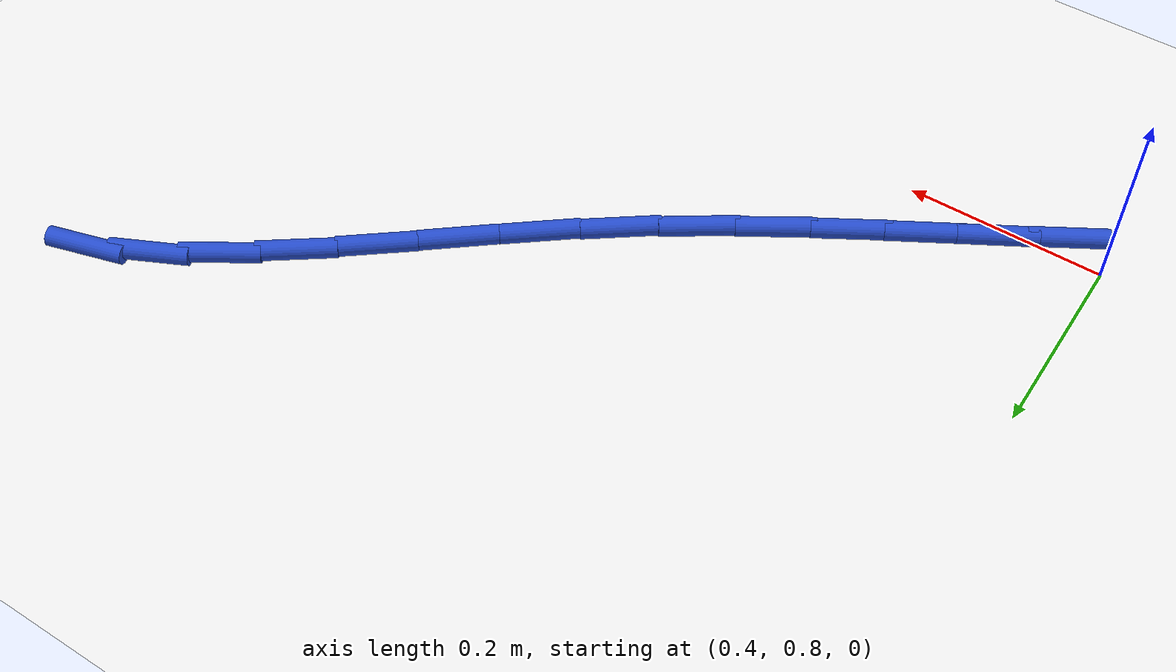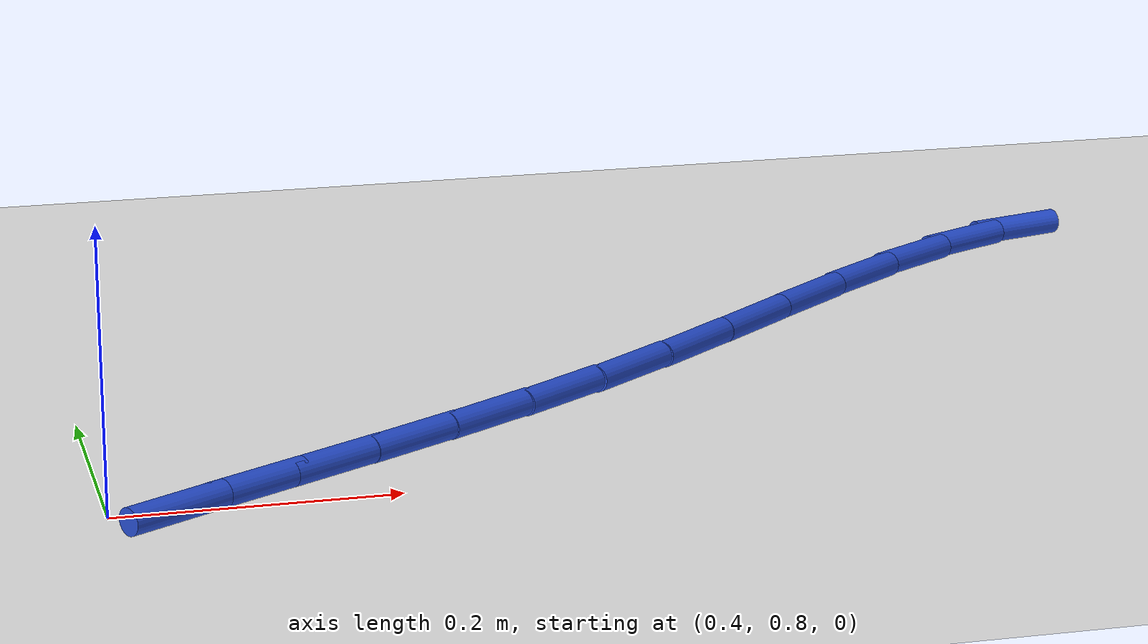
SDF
<sdf version="1.6">
 <world name="default">
  <model name="ground_plane">
   <static>1</static>
   <link name="link">
    <collision name="collision">
     <geometry><plane><normal>0 0 1</normal><size>100 100</size></plane></geometry>
     <surface><friction><ode><mu>100</mu><mu2>50</mu2></ode></friction></surface>
    </collision>
    <visual name="visual">
     <cast_shadows>0</cast_shadows>
     <geometry><plane><normal>0 0 1</normal><size>100 100</size></plane></geometry>
     <material>
      <script><uri>file://media/materials/scripts/gazebo.material</uri><name>Gazebo/WhiteGlow</name></script>
     </material>
    </visual>
   </link>
  </model>
  <model name="line">
   <link name="link_14">
    <pose>0.44345297258422683 0.78132017617875 0.01 0 1.57 0.5389078457305435</pose>
    <collision name="collision">
     <geometry><cylinder><radius>0.01</radius><length>0.08</length></cylinder></geometry>
    </collision>
    <visual name="visual">
     <material>
      <script><name>Gazebo/Blue</name><uri>file://media/materials/scripts/gazebo.material</uri></script>
     </material>
     <geometry><cylinder><radius>0.01</radius><length>0.08</length></cylinder></geometry>
    </visual>
   </link>
   <link name="link_15">
    <pose>0.5021670923574004 0.8164280498990547 0.01 0 1.57 0.5280935247451768</pose>
    <collision name="collision">
     <geometry><cylinder><radius>0.01</radius><length>0.08</length></cylinder></geometry>
    </collision>
    <visual name="visual">
     <material>
      <script><name>Gazebo/Blue</name><uri>file://media/materials/scripts/gazebo.material</uri></script>
     </material>
     <geometry><cylinder><radius>0.01</radius><length>0.08</length></cylinder></geometry>
    </visual>
   </link>
   <link name="link_16">
    <pose>0.5625542943661463 0.8516554617084556 0.01 0 1.57 0.5303267433222953</pose>
    <collision name="collision">
     <geometry><cylinder><radius>0.01</radius><length>0.08</length></cylinder></geometry>
    </collision>
    <visual name="visual">
     <material>
      <script><name>Gazebo/Blue</name><uri>file://media/materials/scripts/gazebo.material</uri></script>
     </material>
     <geometry><cylinder><radius>0.01</radius><length>0.08</length></cylinder></geometry>
    </visual>
   </link>
   <link name="link_17">
    <pose>0.6241851812066237 0.8877931026430699 0.01 0 1.57 0.5447819376989208</pose>
    <collision name="collision">
     <geometry><cylinder><radius>0.01</radius><length>0.08</length></cylinder></geometry>
    </collision>
    <visual name="visual">
     <material>
      <script><name>Gazebo/Blue</name><uri>file://media/materials/scripts/gazebo.material</uri></script>
     </material>
     <geometry><cylinder><radius>0.01</radius><length>0.08</length></cylinder></geometry>
    </visual>
   </link>
   <link name="link_18">
    <pose>0.6866303554749913 0.9256316637390155 0.01 0 1.57 0.5706549017349055</pose>
    <collision name="collision">
     <geometry><cylinder><radius>0.01</radius><length>0.08</length></cylinder></geometry>
    </collision>
    <visual name="visual">
     <material>
      <script><name>Gazebo/Blue</name><uri>file://media/materials/scripts/gazebo.material</uri></script>
     </material>
     <geometry><cylinder><radius>0.01</radius><length>0.08</length></cylinder></geometry>
    </visual>
   </link>
   <link name="link_19">
    <pose>0.7494604197674085 0.96596183603241 0.01 0 1.57 0.6071100782835567</pose>
    <collision name="collision">
     <geometry><cylinder><radius>0.01</radius><length>0.08</length></cylinder></geometry>
    </collision>
    <visual name="visual">
     <material>
      <script><name>Gazebo/Blue</name><uri>file://media/materials/scripts/gazebo.material</uri></script>
     </material>
     <geometry><cylinder><radius>0.01</radius><length>0.08</length></cylinder></geometry>
    </visual>
   </link>
   <link name="link_20">
    <pose>0.8122459766800338 1.0095743105593709 0.01 0 1.57 0.6513472190072261</pose>
    <collision name="collision">
     <geometry><cylinder><radius>0.01</radius><length>0.08</length></cylinder></geometry>
    </collision>
    <visual name="visual">
     <material>
      <script><name>Gazebo/Blue</name><uri>file://media/materials/scripts/gazebo.material</uri></script>
     </material>
     <geometry><cylinder><radius>0.01</radius><length>0.08</length></cylinder></geometry>
    </visual>
   </link>
   <link name="link_21">
    <pose>0.8745737516657341 1.0570887910517173 0.01 0 1.57 0.6832372563930553</pose>
    <collision name="collision">
     <geometry><cylinder><radius>0.01</radius><length>0.08</length></cylinder></geometry>
    </collision>
    <visual name="visual">
     <material>
      <script><name>Gazebo/Blue</name><uri>file://media/materials/scripts/gazebo.material</uri></script>
     </material>
     <geometry><cylinder><radius>0.01</radius><length>0.08</length></cylinder></geometry>
    </visual>
   </link>
   <link name="link_22">
    <pose>0.9362063652315208 1.1072595660923084 0.01 0 1.57 0.6924036784650579</pose>
    <collision name="collision">
     <geometry><cylinder><radius>0.01</radius><length>0.08</length></cylinder></geometry>
    </collision>
    <visual name="visual">
     <material>
      <script><name>Gazebo/Blue</name><uri>file://media/materials/scripts/gazebo.material</uri></script>
     </material>
     <geometry><cylinder><radius>0.01</radius><length>0.08</length></cylinder></geometry>
    </visual>
   </link>
   <link name="link_23">
    <pose>0.9970146718661106 1.1576930732906359 0.01 0 1.57 0.6788100449673418</pose>
    <collision name="collision">
     <geometry><cylinder><radius>0.01</radius><length>0.08</length></cylinder></geometry>
    </collision>
    <visual name="visual">
     <material>
      <script><name>Gazebo/Blue</name><uri>file://media/materials/scripts/gazebo.material</uri></script>
     </material>
     <geometry><cylinder><radius>0.01</radius><length>0.08</length></cylinder></geometry>
    </visual>
   </link>
   <link name="link_24">
    <pose>1.0568711082375688 1.2059789708115587 0.01 0 1.57 0.6396265557636318</pose>
    <collision name="collision">
     <geometry><cylinder><radius>0.01</radius><length>0.08</length></cylinder></geometry>
    </collision>
    <visual name="visual">
     <material>
      <script><name>Gazebo/Blue</name><uri>file://media/materials/scripts/gazebo.material</uri></script>
     </material>
     <geometry><cylinder><radius>0.01</radius><length>0.08</length></cylinder></geometry>
    </visual>
   </link>
   <link name="link_25">
    <pose>1.11564811101396 1.249706916819935 0.01 0 1.57 0.5682631903743882</pose>
    <collision name="collision">
     <geometry><cylinder><radius>0.01</radius><length>0.08</length></cylinder></geometry>
    </collision>
    <visual name="visual">
     <material>
      <script><name>Gazebo/Blue</name><uri>file://media/materials/scripts/gazebo.material</uri></script>
     </material>
     <geometry><cylinder><radius>0.01</radius><length>0.08</length></cylinder></geometry>
    </visual>
   </link>
   <link name="link_26">
    <pose>1.1732181168633495 1.2864665694806234 0.01 0 1.57 0.4531124926921891</pose>
    <collision name="collision">
     <geometry><cylinder><radius>0.01</radius><length>0.08</length></cylinder></geometry>
    </collision>
    <visual name="visual">
     <material>
      <script><name>Gazebo/Blue</name><uri>file://media/materials/scripts/gazebo.material</uri></script>
     </material>
     <geometry><cylinder><radius>0.01</radius><length>0.08</length></cylinder></geometry>
    </visual>
   </link>
   <link name="link_27">
    <pose>1.229453562453802 1.3138475869584811 0.01 0 1.57 0.27732917362147114</pose>
    <collision name="collision">
     <geometry><cylinder><radius>0.01</radius><length>0.08</length></cylinder></geometry>
    </collision>
    <visual name="visual">
     <material>
      <script><name>Gazebo/Blue</name><uri>file://media/materials/scripts/gazebo.material</uri></script>
     </material>
     <geometry><cylinder><radius>0.01</radius><length>0.08</length></cylinder></geometry>
    </visual>
   </link>
  </model>
 </world>
</sdf>
